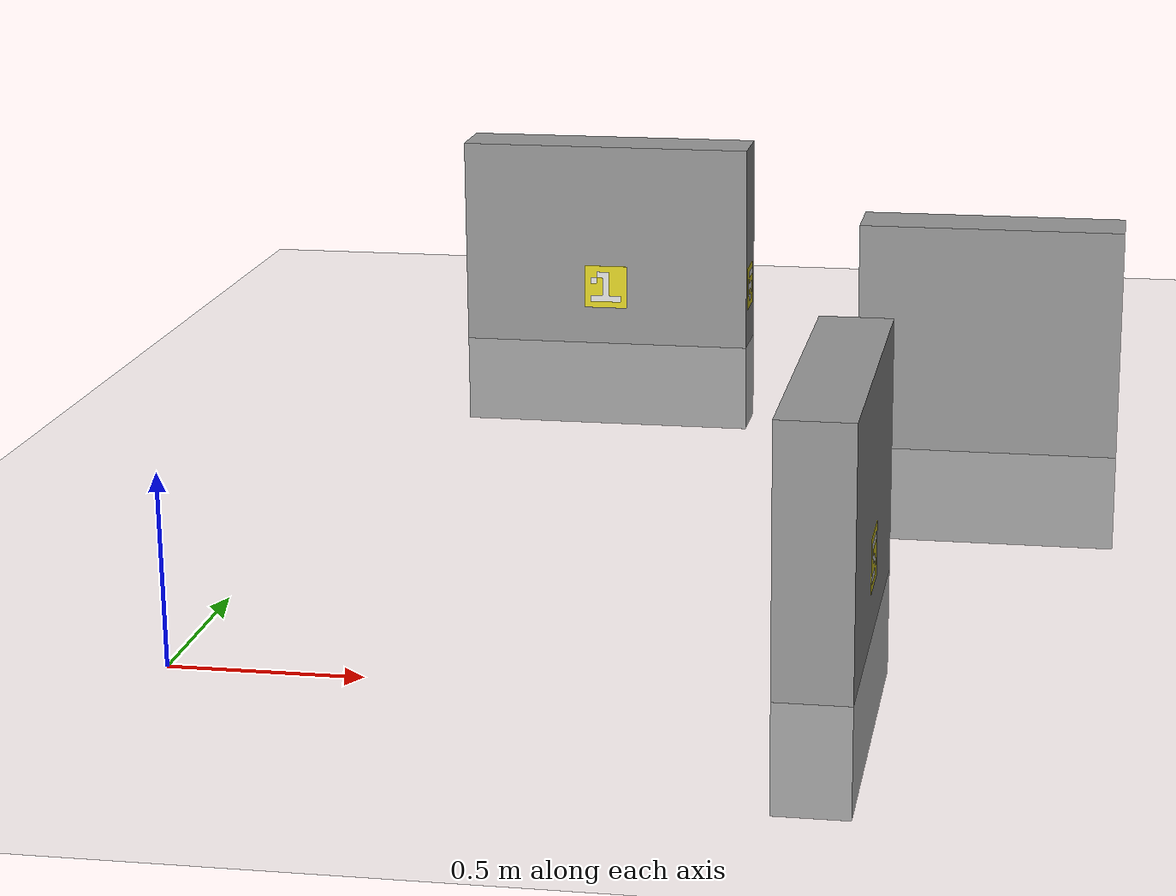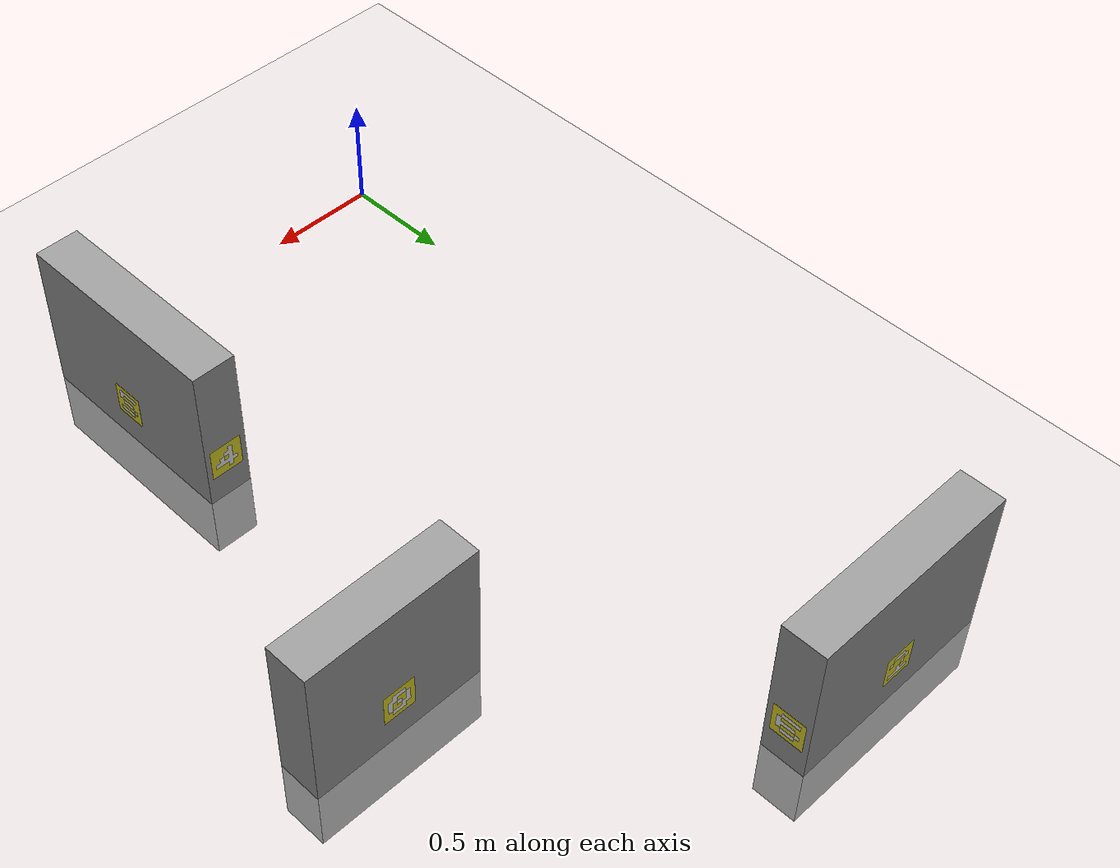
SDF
<sdf version="1.6">
 <world name="default">
  <model name="ground_plane">
   <static>1</static>
   <link name="link">
    <collision name="collision">
     <geometry><plane><normal>0 0 1</normal><size>100 100</size></plane></geometry>
     <surface><friction><ode><mu>100</mu><mu2>50</mu2></ode></friction></surface>
    </collision>
    <visual name="visual">
     <cast_shadows>0</cast_shadows>
     <geometry><plane><normal>0 0 1</normal><size>100 100</size></plane></geometry>
     <material>
      <script><uri>file://media/materials/scripts/gazebo.material</uri><name>Gazebo/Gray</name></script>
     </material>
    </visual>
   </link>
  </model>
  <model name="Untitled1">
   <pose>1.6 0.5 0 0 -0 0</pose>
   <link name="Wall_0">
    <collision name="Wall_0_Collision">
     <geometry><box><size>1 0.2 1</size></box></geometry>
     <pose>0 0 0.2 0 -0 0</pose>
    </collision>
    <visual name="Wall_0_Visual">
     <pose>0 0 0.2 0 -0 0</pose>
     <geometry><box><size>1 0.2 1</size></box></geometry>
     <material>
      <script><uri>file://media/materials/scripts/gazebo.material</uri><name>Gazebo/Gray</name></script>
      <ambient>1 1 1 1</ambient>
     </material>
     <meta><layer>0</layer></meta>
    </visual>
    <pose>0 0 0 0 -0 1.5708</pose>
   </link>
   <static>1</static>
  </model>
  <model name="Untitled1_clone_0">
   <pose>0.5 3.38 0 0 0 -1.5708</pose>
   <link name="Wall_0">
    <collision name="Wall_0_Collision">
     <geometry><box><size>1 0.2 1</size></box></geometry>
     <pose>0 0 0.2 0 -0 0</pose>
    </collision>
    <visual name="Wall_0_Visual">
     <pose>0 0 0.2 0 -0 0</pose>
     <geometry><box><size>1 0.2 1</size></box></geometry>
     <material>
      <script><uri>file://media/materials/scripts/gazebo.material</uri><name>Gazebo/Gray</name></script>
      <ambient>1 1 1 1</ambient>
     </material>
     <meta><layer>0</layer></meta>
    </visual>
    <pose>0 0 0 0 -0 1.5708</pose>
   </link>
   <static>1</static>
  </model>
  <model name="Untitled3">
   <pose>1.9 2.24 0 0 -0 0</pose>
   <link name="Wall_17">
    <collision name="Wall_17_Collision">
     <geometry><box><size>0.8 0.2 1</size></box></geometry>
     <pose>0 0 0.2 0 -0 0</pose>
    </collision>
    <visual name="Wall_17_Visual">
     <pose>0 0 0.2 0 -0 0</pose>
     <geometry><box><size>0.8 0.2 1</size></box></geometry>
     <material>
      <script><uri>file://media/materials/scripts/gazebo.material</uri><name>Gazebo/Gray</name></script>
      <ambient>1 1 1 1</ambient>
     </material>
     <meta><layer>0</layer></meta>
    </visual>
   </link>
   <static>1</static>
  </model>
  <model name="labal_one">
   <link name="base">
    <inertial>
     <pose>-0.001086 -0.000137 -0.001593 0 -0 0</pose>
     <mass>0.0137688</mass>
     <inertia>
      <ixx>2.44128e-05</ixx>
      <ixy>-9.16282e-09</ixy>
      <ixz>4.39336e-07</ixz>
      <iyy>2.60674e-05</iyy>
      <iyz>-1.55543e-08</iyz>
      <izz>4.38445e-05</izz>
     </inertia>
    </inertial>
    <collision name="base_collision">
     <geometry>
      <mesh><scale>1 1 1</scale><uri>/home/tdt/catkin_ws/src/RoboRTS/small_car/meshes/base.STL</uri></mesh>
     </geometry>
    </collision>
    <collision name="base_fixed_joint_lump__labal_one_collision_1">
     <pose>0 0 0 1.5708 -0 0</pose>
     <geometry>
      <mesh><scale>1 1 1</scale><uri>/home/tdt/catkin_ws/src/RoboRTS/small_car/meshes/labal_one.STL</uri></mesh>
     </geometry>
    </collision>
    <visual name="base_visual">
     <geometry>
      <mesh><scale>1 1 1</scale><uri>/home/tdt/catkin_ws/src/RoboRTS/small_car/meshes/base.STL</uri></mesh>
     </geometry>
     <material>
      <script><name>Gazebo/Yellow</name><uri>file://media/materials/scripts/gazebo.material</uri></script>
     </material>
    </visual>
    <visual name="base_fixed_joint_lump__labal_one_visual_1">
     <pose>0 0 0 1.5708 -0 0</pose>
     <geometry>
      <mesh><scale>1 1 1</scale><uri>/home/tdt/catkin_ws/src/RoboRTS/small_car/meshes/labal_one.STL</uri></mesh>
     </geometry>
     <material>
      <script><name>Gazebo/White</name><uri>file://media/materials/scripts/gazebo.material</uri></script>
     </material>
    </visual>
   </link>
   <pose>0.5 3.28 0.2 0 -0 0</pose>
   <static>1</static>
  </model>
  <model name="labal_two">
   <link name="base">
    <inertial>
     <pose>0.00033 -0.000348 -0.00107 0 -0 0</pose>
     <mass>0.0139978</mass>
     <inertia>
      <ixx>2.48566e-05</ixx>
      <ixy>1.85872e-09</ixy>
      <ixz>-5.95592e-09</ixz>
      <iyy>4.82541e-05</iyy>
      <iyz>-6.01782e-09</iyz>
      <izz>2.33991e-05</izz>
     </inertia>
    </inertial>
    <collision name="base_collision">
     <geometry>
      <mesh><scale>1 1 1</scale><uri>/home/tdt/catkin_ws/src/RoboRTS/small_car/meshes/base.STL</uri></mesh>
     </geometry>
    </collision>
    <collision name="base_fixed_joint_lump__labal_two_collision_1">
     <pose>0 0 0 1.5708 -0 0</pose>
     <geometry>
      <mesh><scale>1 1 1</scale><uri>/home/tdt/catkin_ws/src/RoboRTS/small_car/meshes/labal_two.STL</uri></mesh>
     </geometry>
    </collision>
    <visual name="base_visual">
     <geometry>
      <mesh><scale>1 1 1</scale><uri>/home/tdt/catkin_ws/src/RoboRTS/small_car/meshes/base.STL</uri></mesh>
     </geometry>
     <material>
      <script><name>Gazebo/Yellow</name><uri>file://media/materials/scripts/gazebo.material</uri></script>
     </material>
    </visual>
    <visual name="base_fixed_joint_lump__labal_two_visual_1">
     <pose>0 0 0 1.5708 -0 0</pose>
     <geometry>
      <mesh><scale>1 1 1</scale><uri>/home/tdt/catkin_ws/src/RoboRTS/small_car/meshes/labal_two.STL</uri></mesh>
     </geometry>
     <material>
      <script><name>Gazebo/White</name><uri>file://media/materials/scripts/gazebo.material</uri></script>
     </material>
    </visual>
   </link>
   <pose>0.5 3.48 0.2 0 -0 3.14</pose>
   <static>1</static>
  </model>
  <model name="labal5">
   <link name="base">
    <inertial>
     <pose>0.00033 -0.000348 -0.00107 0 -0 0</pose>
     <mass>0.0139978</mass>
     <inertia>
      <ixx>2.48566e-05</ixx>
      <ixy>1.85872e-09</ixy>
      <ixz>-5.95592e-09</ixz>
      <iyy>4.82541e-05</iyy>
      <iyz>-6.01782e-09</iyz>
      <izz>2.33991e-05</izz>
     </inertia>
    </inertial>
    <collision name="base_collision">
     <geometry>
      <mesh><scale>1 1 1</scale><uri>/home/tdt/catkin_ws/src/RoboRTS/small_car/meshes/base.STL</uri></mesh>
     </geometry>
    </collision>
    <collision name="base_fixed_joint_lump__labal5_collision_1">
     <pose>0 0 0 1.5708 -0 0</pose>
     <geometry>
      <mesh><scale>1 1 1</scale><uri>/home/tdt/catkin_ws/src/RoboRTS/small_car/meshes/labal5.STL</uri></mesh>
     </geometry>
    </collision>
    <visual name="base_visual">
     <geometry>
      <mesh><scale>1 1 1</scale><uri>/home/tdt/catkin_ws/src/RoboRTS/small_car/meshes/base.STL</uri></mesh>
     </geometry>
     <material>
      <script><name>Gazebo/Yellow</name><uri>file://media/materials/scripts/gazebo.material</uri></script>
     </material>
    </visual>
    <visual name="base_fixed_joint_lump__labal5_visual_1">
     <pose>0 0 0 1.5708 -0 0</pose>
     <geometry>
      <mesh><scale>1 1 1</scale><uri>/home/tdt/catkin_ws/src/RoboRTS/small_car/meshes/labal5.STL</uri></mesh>
     </geometry>
     <material>
      <script><name>Gazebo/White</name><uri>file://media/materials/scripts/gazebo.material</uri></script>
     </material>
    </visual>
   </link>
   <pose>1.7 0.5 0.2 0 -0 1.57</pose>
   <static>1</static>
  </model>
  <model name="labal3">
   <link name="base">
    <inertial>
     <pose>-0.001086 -0.000137 -0.001593 0 -0 0</pose>
     <mass>0.0137688</mass>
     <inertia>
      <ixx>2.44128e-05</ixx>
      <ixy>-9.16282e-09</ixy>
      <ixz>4.39336e-07</ixz>
      <iyy>2.60674e-05</iyy>
      <iyz>-1.55543e-08</iyz>
      <izz>4.38445e-05</izz>
     </inertia>
    </inertial>
    <collision name="base_collision">
     <geometry>
      <mesh><scale>1 1 1</scale><uri>/home/tdt/catkin_ws/src/RoboRTS/small_car/meshes/base.STL</uri></mesh>
     </geometry>
    </collision>
    <collision name="base_fixed_joint_lump__labal3_collision_1">
     <pose>0 0 0 1.5708 -0 0</pose>
     <geometry>
      <mesh><scale>1 1 1</scale><uri>/home/tdt/catkin_ws/src/RoboRTS/small_car/meshes/labal3.STL</uri></mesh>
     </geometry>
    </collision>
    <visual name="base_visual">
     <geometry>
      <mesh><scale>1 1 1</scale><uri>/home/tdt/catkin_ws/src/RoboRTS/small_car/meshes/base.STL</uri></mesh>
     </geometry>
     <material>
      <script><name>Gazebo/Yellow</name><uri>file://media/materials/scripts/gazebo.material</uri></script>
     </material>
    </visual>
    <visual name="base_fixed_joint_lump__labal3_visual_1">
     <pose>0 0 0 1.5708 -0 0</pose>
     <geometry>
      <mesh><scale>1 1 1</scale><uri>/home/tdt/catkin_ws/src/RoboRTS/small_car/meshes/labal3.STL</uri></mesh>
     </geometry>
     <material>
      <script><name>Gazebo/White</name><uri>file://media/materials/scripts/gazebo.material</uri></script>
     </material>
    </visual>
   </link>
   <pose>1.5 0.5 0.2 0 0 -1.57</pose>
   <static>1</static>
  </model>
  <model name="labal7">
   <link name="base">
    <inertial>
     <pose>-0.001086 -0.000137 -0.001593 0 -0 0</pose>
     <mass>0.0137688</mass>
     <inertia>
      <ixx>2.44128e-05</ixx>
      <ixy>-9.16282e-09</ixy>
      <ixz>4.39336e-07</ixz>
      <iyy>2.60674e-05</iyy>
      <iyz>-1.55543e-08</iyz>
      <izz>4.38445e-05</izz>
     </inertia>
    </inertial>
    <collision name="base_collision">
     <geometry>
      <mesh><scale>1 1 1</scale><uri>/home/tdt/catkin_ws/src/RoboRTS/small_car/meshes/base.STL</uri></mesh>
     </geometry>
    </collision>
    <collision name="base_fixed_joint_lump__labal7_collision_1">
     <pose>0 0 0 1.5708 -0 0</pose>
     <geometry>
      <mesh><scale>1 1 1</scale><uri>/home/tdt/catkin_ws/src/RoboRTS/small_car/meshes/labal7.STL</uri></mesh>
     </geometry>
    </collision>
    <visual name="base_visual">
     <geometry>
      <mesh><scale>1 1 1</scale><uri>/home/tdt/catkin_ws/src/RoboRTS/small_car/meshes/base.STL</uri></mesh>
     </geometry>
     <material>
      <script><name>Gazebo/Yellow</name><uri>file://media/materials/scripts/gazebo.material</uri></script>
     </material>
    </visual>
    <visual name="base_fixed_joint_lump__labal7_visual_1">
     <pose>0 0 0 1.5708 -0 0</pose>
     <geometry>
      <mesh><scale>1 1 1</scale><uri>/home/tdt/catkin_ws/src/RoboRTS/small_car/meshes/labal7.STL</uri></mesh>
     </geometry>
     <material>
      <script><name>Gazebo/White</name><uri>file://media/materials/scripts/gazebo.material</uri></script>
     </material>
    </visual>
   </link>
   <pose>1.5 2.24 0.2 0 0 -1.57</pose>
   <static>1</static>
  </model>
  <model name="labal0">
   <link name="base">
    <inertial>
     <pose>-0.001086 -0.000137 -0.001593 0 -0 0</pose>
     <mass>0.0137688</mass>
     <inertia>
      <ixx>2.44128e-05</ixx>
      <ixy>-9.16282e-09</ixy>
      <ixz>4.39336e-07</ixz>
      <iyy>2.60674e-05</iyy>
      <iyz>-1.55543e-08</iyz>
      <izz>4.38445e-05</izz>
     </inertia>
    </inertial>
    <collision name="base_collision">
     <geometry>
      <mesh><scale>1 1 1</scale><uri>/home/tdt/catkin_ws/src/RoboRTS/small_car/meshes/base.STL</uri></mesh>
     </geometry>
    </collision>
    <collision name="base_fixed_joint_lump__labal0_collision_1">
     <pose>0 0 0 1.5708 -0 0</pose>
     <geometry>
      <mesh><scale>1 1 1</scale><uri>/home/tdt/catkin_ws/src/RoboRTS/small_car/meshes/labal0.STL</uri></mesh>
     </geometry>
    </collision>
    <visual name="base_visual">
     <geometry>
      <mesh><scale>1 1 1</scale><uri>/home/tdt/catkin_ws/src/RoboRTS/small_car/meshes/base.STL</uri></mesh>
     </geometry>
     <material>
      <script><name>Gazebo/Yellow</name><uri>file://media/materials/scripts/gazebo.material</uri></script>
     </material>
    </visual>
    <visual name="base_fixed_joint_lump__labal0_visual_1">
     <pose>0 0 0 1.5708 -0 0</pose>
     <geometry>
      <mesh><scale>1 1 1</scale><uri>/home/tdt/catkin_ws/src/RoboRTS/small_car/meshes/labal0.STL</uri></mesh>
     </geometry>
     <material>
      <script><name>Gazebo/White</name><uri>file://media/materials/scripts/gazebo.material</uri></script>
     </material>
    </visual>
   </link>
   <pose>1.9 2.34 0.2 0 -0 3.14</pose>
   <static>1</static>
  </model>
  <model name="labal4">
   <link name="base">
    <inertial>
     <pose>0.00033 -0.000348 -0.00107 0 -0 0</pose>
     <mass>0.0139978</mass>
     <inertia>
      <ixx>2.48566e-05</ixx>
      <ixy>1.85872e-09</ixy>
      <ixz>-5.95592e-09</ixz>
      <iyy>4.82541e-05</iyy>
      <iyz>-6.01782e-09</iyz>
      <izz>2.33991e-05</izz>
     </inertia>
    </inertial>
    <collision name="base_collision">
     <geometry>
      <mesh><scale>1 1 1</scale><uri>/home/tdt/catkin_ws/src/RoboRTS/small_car/meshes/base.STL</uri></mesh>
     </geometry>
    </collision>
    <collision name="base_fixed_joint_lump__labal4_collision_1">
     <pose>0 0 0 1.5708 -0 0</pose>
     <geometry>
      <mesh><scale>1 1 1</scale><uri>/home/tdt/catkin_ws/src/RoboRTS/small_car/meshes/labal4.STL</uri></mesh>
     </geometry>
    </collision>
    <visual name="base_visual">
     <geometry>
      <mesh><scale>1 1 1</scale><uri>/home/tdt/catkin_ws/src/RoboRTS/small_car/meshes/base.STL</uri></mesh>
     </geometry>
     <material>
      <script><name>Gazebo/Yellow</name><uri>file://media/materials/scripts/gazebo.material</uri></script>
     </material>
    </visual>
    <visual name="base_fixed_joint_lump__labal4_visual_1">
     <pose>0 0 0 1.5708 -0 0</pose>
     <geometry>
      <mesh><scale>1 1 1</scale><uri>/home/tdt/catkin_ws/src/RoboRTS/small_car/meshes/labal4.STL</uri></mesh>
     </geometry>
     <material>
      <script><name>Gazebo/White</name><uri>file://media/materials/scripts/gazebo.material</uri></script>
     </material>
    </visual>
   </link>
   <pose>1.6 1 0.2 0 -0 3.14</pose>
   <static>1</static>
  </model>
  <model name="labal6">
   <link name="base">
    <inertial>
     <pose>-0.001086 -0.000137 -0.001593 0 -0 0</pose>
     <mass>0.0137688</mass>
     <inertia>
      <ixx>2.44128e-05</ixx>
      <ixy>-9.16282e-09</ixy>
      <ixz>4.39336e-07</ixz>
      <iyy>2.60674e-05</iyy>
      <iyz>-1.55543e-08</iyz>
      <izz>4.38445e-05</izz>
     </inertia>
    </inertial>
    <collision name="base_collision">
     <geometry>
      <mesh><scale>1 1 1</scale><uri>/home/tdt/catkin_ws/src/RoboRTS/small_car/meshes/base.STL</uri></mesh>
     </geometry>
    </collision>
    <collision name="base_fixed_joint_lump__labal6_collision_1">
     <pose>0 0 0 1.5708 -0 0</pose>
     <geometry>
      <mesh><scale>1 1 1</scale><uri>/home/tdt/catkin_ws/src/RoboRTS/small_car/meshes/labal6.STL</uri></mesh>
     </geometry>
    </collision>
    <visual name="base_visual">
     <geometry>
      <mesh><scale>1 1 1</scale><uri>/home/tdt/catkin_ws/src/RoboRTS/small_car/meshes/base.STL</uri></mesh>
     </geometry>
     <material>
      <script><name>Gazebo/Yellow</name><uri>file://media/materials/scripts/gazebo.material</uri></script>
     </material>
    </visual>
    <visual name="base_fixed_joint_lump__labal6_visual_1">
     <pose>0 0 0 1.5708 -0 0</pose>
     <geometry>
      <mesh><scale>1 1 1</scale><uri>/home/tdt/catkin_ws/src/RoboRTS/small_car/meshes/labal6.STL</uri></mesh>
     </geometry>
     <material>
      <script><name>Gazebo/White</name><uri>file://media/materials/scripts/gazebo.material</uri></script>
     </material>
    </visual>
   </link>
   <pose>1 3.38 0.2 0 -0 1.57</pose>
   <static>1</static>
  </model>
 </world>
</sdf>
